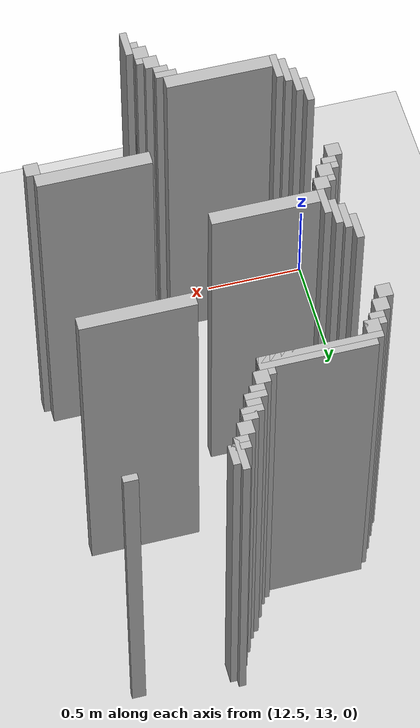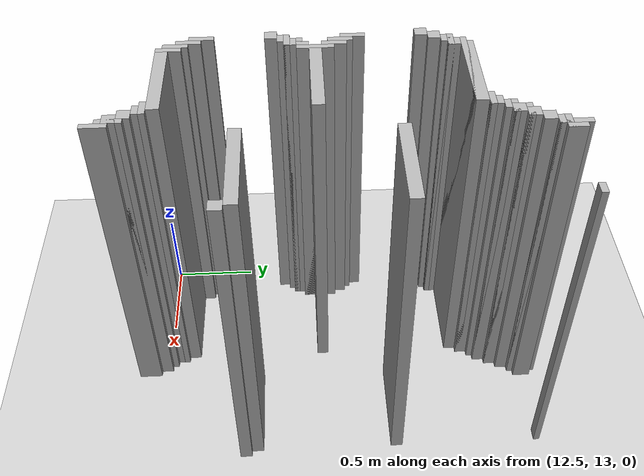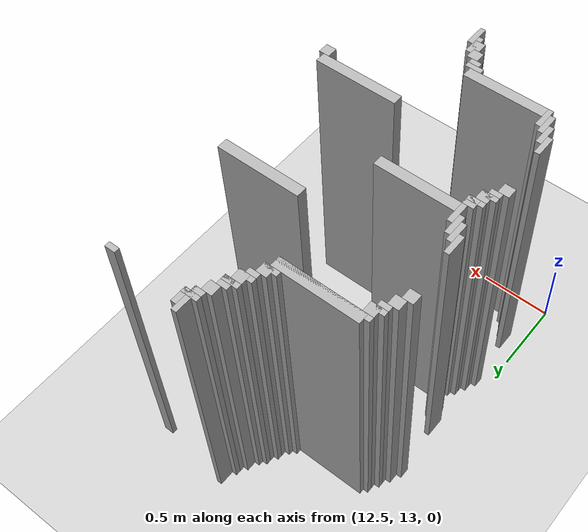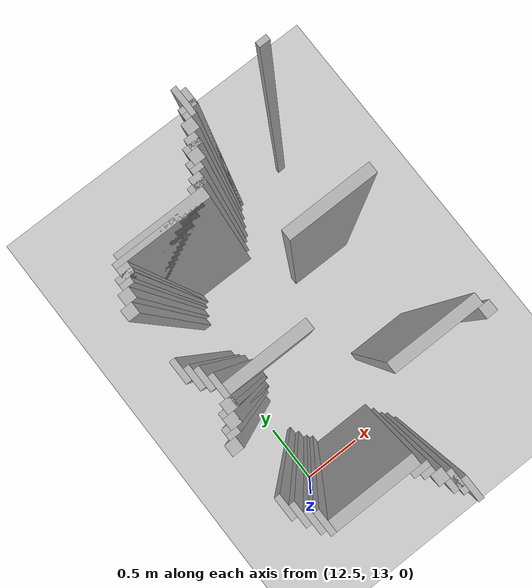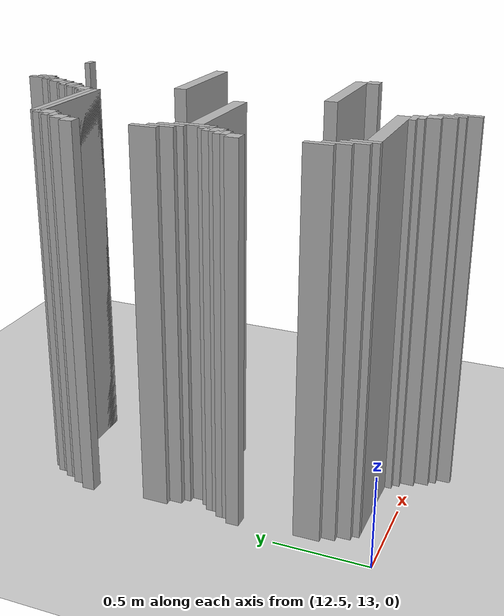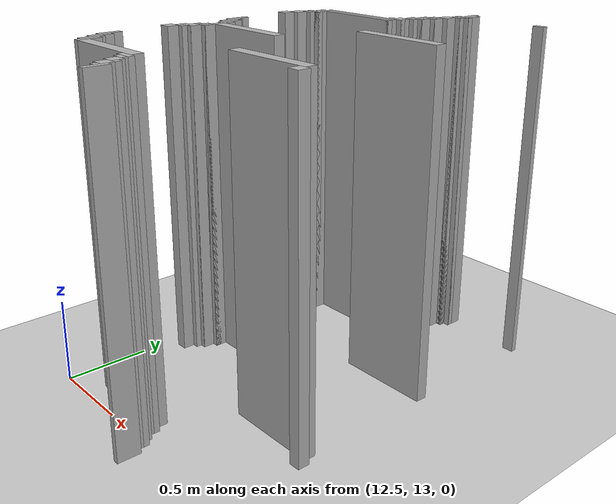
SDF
<sdf version="1.6">
 <world name="slam_world">
  <model name="ground_plane">
   <static>true</static>
   <link name="link">
    <collision name="collision">
     <geometry><plane><normal>0 0 1</normal><size>100 100</size></plane></geometry>
    </collision>
    <visual name="visual">
     <geometry><plane><normal>0 0 1</normal><size>100 100</size></plane></geometry>
     <material>
      <ambient>0.8 0.8 0.8 1</ambient>
      <diffuse>0.8 0.8 0.8 1</diffuse>
      <specular>0.8 0.8 0.8 1</specular>
     </material>
    </visual>
   </link>
  </model>
  <model name="wall_708">
   <static>true</static>
   <pose>13.451276102088167 15.261020881670532 1.0 0 0 0</pose>
   <link name="link">
    <collision name="collision">
     <geometry><box><size>0.03480278422273782 0.17401392111368907 2.0</size></box></geometry>
    </collision>
    <visual name="visual">
     <geometry><box><size>0.03480278422273782 0.17401392111368907 2.0</size></box></geometry>
     <material><ambient>0.5 0.5 0.5 1</ambient><diffuse>0.7 0.7 0.7 1</diffuse></material>
    </visual>
   </link>
  </model>
  <model name="wall_725">
   <static>true</static>
   <pose>13.486078886310905 15.261020881670532 1.0 0 0 0</pose>
   <link name="link">
    <collision name="collision">
     <geometry><box><size>0.03480278422273782 0.10440835266821345 2.0</size></box></geometry>
    </collision>
    <visual name="visual">
     <geometry><box><size>0.03480278422273782 0.10440835266821345 2.0</size></box></geometry>
     <material><ambient>0.5 0.5 0.5 1</ambient><diffuse>0.7 0.7 0.7 1</diffuse></material>
    </visual>
   </link>
  </model>
  <model name="wall_737">
   <static>true</static>
   <pose>13.955916473317865 15.261020881670532 1.0 0 0 0</pose>
   <link name="link">
    <collision name="collision">
     <geometry><box><size>0.06960556844547564 0.03480278422273782 2.0</size></box></geometry>
    </collision>
    <visual name="visual">
     <geometry><box><size>0.06960556844547564 0.03480278422273782 2.0</size></box></geometry>
     <material><ambient>0.5 0.5 0.5 1</ambient><diffuse>0.7 0.7 0.7 1</diffuse></material>
    </visual>
   </link>
  </model>
  <model name="wall_747">
   <static>true</static>
   <pose>13.451276102088167 15.226218097447795 1.0 0 0 0</pose>
   <link name="link">
    <collision name="collision">
     <geometry><box><size>0.10440835266821345 0.03480278422273782 2.0</size></box></geometry>
    </collision>
    <visual name="visual">
     <geometry><box><size>0.10440835266821345 0.03480278422273782 2.0</size></box></geometry>
     <material><ambient>0.5 0.5 0.5 1</ambient><diffuse>0.7 0.7 0.7 1</diffuse></material>
    </visual>
   </link>
  </model>
  <model name="wall_759">
   <static>true</static>
   <pose>13.433874709976797 15.191415313225058 1.0 0 0 0</pose>
   <link name="link">
    <collision name="collision">
     <geometry><box><size>0.06960556844547564 0.03480278422273782 2.0</size></box></geometry>
    </collision>
    <visual name="visual">
     <geometry><box><size>0.06960556844547564 0.03480278422273782 2.0</size></box></geometry>
     <material><ambient>0.5 0.5 0.5 1</ambient><diffuse>0.7 0.7 0.7 1</diffuse></material>
    </visual>
   </link>
  </model>
  <model name="wall_771">
   <static>true</static>
   <pose>13.39907192575406 15.139211136890951 1.0 0 0 0</pose>
   <link name="link">
    <collision name="collision">
     <geometry><box><size>0.06960556844547564 0.06960556844547564 2.0</size></box></geometry>
    </collision>
    <visual name="visual">
     <geometry><box><size>0.06960556844547564 0.06960556844547564 2.0</size></box></geometry>
     <material><ambient>0.5 0.5 0.5 1</ambient><diffuse>0.7 0.7 0.7 1</diffuse></material>
    </visual>
   </link>
  </model>
  <model name="wall_783">
   <static>true</static>
   <pose>13.364269141531322 15.069605568445475 1.0 0 0 0</pose>
   <link name="link">
    <collision name="collision">
     <geometry><box><size>0.06960556844547564 0.06960556844547564 2.0</size></box></geometry>
    </collision>
    <visual name="visual">
     <geometry><box><size>0.06960556844547564 0.06960556844547564 2.0</size></box></geometry>
     <material><ambient>0.5 0.5 0.5 1</ambient><diffuse>0.7 0.7 0.7 1</diffuse></material>
    </visual>
   </link>
  </model>
  <model name="wall_795">
   <static>true</static>
   <pose>13.346867749419953 15.052204176334106 1.0 0 0 0</pose>
   <link name="link">
    <collision name="collision">
     <geometry><box><size>0.10440835266821345 0.03480278422273782 2.0</size></box></geometry>
    </collision>
    <visual name="visual">
     <geometry><box><size>0.10440835266821345 0.03480278422273782 2.0</size></box></geometry>
     <material><ambient>0.5 0.5 0.5 1</ambient><diffuse>0.7 0.7 0.7 1</diffuse></material>
    </visual>
   </link>
  </model>
  <model name="wall_804">
   <static>true</static>
   <pose>13.329466357308585 15.0 1.0 0 0 0</pose>
   <link name="link">
    <collision name="collision">
     <geometry><box><size>0.06960556844547564 0.06960556844547564 2.0</size></box></geometry>
    </collision>
    <visual name="visual">
     <geometry><box><size>0.06960556844547564 0.06960556844547564 2.0</size></box></geometry>
     <material><ambient>0.5 0.5 0.5 1</ambient><diffuse>0.7 0.7 0.7 1</diffuse></material>
    </visual>
   </link>
  </model>
  <model name="wall_816">
   <static>true</static>
   <pose>13.312064965197216 14.982598607888631 1.0 0 0 0</pose>
   <link name="link">
    <collision name="collision">
     <geometry><box><size>0.10440835266821345 0.03480278422273782 2.0</size></box></geometry>
    </collision>
    <visual name="visual">
     <geometry><box><size>0.10440835266821345 0.03480278422273782 2.0</size></box></geometry>
     <material><ambient>0.5 0.5 0.5 1</ambient><diffuse>0.7 0.7 0.7 1</diffuse></material>
    </visual>
   </link>
  </model>
  <model name="wall_824">
   <static>true</static>
   <pose>13.294663573085847 14.947795823665892 1.0 0 0 0</pose>
   <link name="link">
    <collision name="collision">
     <geometry><box><size>0.06960556844547564 0.03480278422273782 2.0</size></box></geometry>
    </collision>
    <visual name="visual">
     <geometry><box><size>0.06960556844547564 0.03480278422273782 2.0</size></box></geometry>
     <material><ambient>0.5 0.5 0.5 1</ambient><diffuse>0.7 0.7 0.7 1</diffuse></material>
    </visual>
   </link>
  </model>
  <model name="wall_836">
   <static>true</static>
   <pose>13.259860788863108 14.895591647331786 1.0 0 0 0</pose>
   <link name="link">
    <collision name="collision">
     <geometry><box><size>0.06960556844547564 0.06960556844547564 2.0</size></box></geometry>
    </collision>
    <visual name="visual">
     <geometry><box><size>0.06960556844547564 0.06960556844547564 2.0</size></box></geometry>
     <material><ambient>0.5 0.5 0.5 1</ambient><diffuse>0.7 0.7 0.7 1</diffuse></material>
    </visual>
   </link>
  </model>
  <model name="wall_841">
   <static>true</static>
   <pose>13.24245939675174 14.878190255220417 1.0 0 0 0</pose>
   <link name="link">
    <collision name="collision">
     <geometry><box><size>0.10440835266821345 0.03480278422273782 2.0</size></box></geometry>
    </collision>
    <visual name="visual">
     <geometry><box><size>0.10440835266821345 0.03480278422273782 2.0</size></box></geometry>
     <material><ambient>0.5 0.5 0.5 1</ambient><diffuse>0.7 0.7 0.7 1</diffuse></material>
    </visual>
   </link>
  </model>
  <model name="wall_855">
   <static>true</static>
   <pose>12.981438515081207 14.825986078886311 1.0 0 0 0</pose>
   <link name="link">
    <collision name="collision">
     <geometry><box><size>0.5568445475638051 0.06960556844547564 2.0</size></box></geometry>
    </collision>
    <visual name="visual">
     <geometry><box><size>0.5568445475638051 0.06960556844547564 2.0</size></box></geometry>
     <material><ambient>0.5 0.5 0.5 1</ambient><diffuse>0.7 0.7 0.7 1</diffuse></material>
    </visual>
   </link>
  </model>
  <model name="wall_866">
   <static>true</static>
   <pose>12.964037122969836 14.80858468677494 1.0 0 0 0</pose>
   <link name="link">
    <collision name="collision">
     <geometry><box><size>0.5916473317865429 0.03480278422273782 2.0</size></box></geometry>
    </collision>
    <visual name="visual">
     <geometry><box><size>0.5916473317865429 0.03480278422273782 2.0</size></box></geometry>
     <material><ambient>0.5 0.5 0.5 1</ambient><diffuse>0.7 0.7 0.7 1</diffuse></material>
    </visual>
   </link>
  </model>
  <model name="wall_877">
   <static>true</static>
   <pose>12.703016241299304 14.756380510440835 1.0 0 0 0</pose>
   <link name="link">
    <collision name="collision">
     <geometry><box><size>0.06960556844547564 0.06960556844547564 2.0</size></box></geometry>
    </collision>
    <visual name="visual">
     <geometry><box><size>0.06960556844547564 0.06960556844547564 2.0</size></box></geometry>
     <material><ambient>0.5 0.5 0.5 1</ambient><diffuse>0.7 0.7 0.7 1</diffuse></material>
    </visual>
   </link>
  </model>
  <model name="wall_889">
   <static>true</static>
   <pose>12.685614849187935 14.738979118329466 1.0 0 0 0</pose>
   <link name="link">
    <collision name="collision">
     <geometry><box><size>0.10440835266821345 0.03480278422273782 2.0</size></box></geometry>
    </collision>
    <visual name="visual">
     <geometry><box><size>0.10440835266821345 0.03480278422273782 2.0</size></box></geometry>
     <material><ambient>0.5 0.5 0.5 1</ambient><diffuse>0.7 0.7 0.7 1</diffuse></material>
    </visual>
   </link>
  </model>
  <model name="wall_897">
   <static>true</static>
   <pose>12.668213457076565 14.704176334106728 1.0 0 0 0</pose>
   <link name="link">
    <collision name="collision">
     <geometry><box><size>0.06960556844547564 0.03480278422273782 2.0</size></box></geometry>
    </collision>
    <visual name="visual">
     <geometry><box><size>0.06960556844547564 0.03480278422273782 2.0</size></box></geometry>
     <material><ambient>0.5 0.5 0.5 1</ambient><diffuse>0.7 0.7 0.7 1</diffuse></material>
    </visual>
   </link>
  </model>
  <model name="wall_909">
   <static>true</static>
   <pose>12.633410672853827 14.65197215777262 1.0 0 0 0</pose>
   <link name="link">
    <collision name="collision">
     <geometry><box><size>0.06960556844547564 0.06960556844547564 2.0</size></box></geometry>
    </collision>
    <visual name="visual">
     <geometry><box><size>0.06960556844547564 0.06960556844547564 2.0</size></box></geometry>
     <material><ambient>0.5 0.5 0.5 1</ambient><diffuse>0.7 0.7 0.7 1</diffuse></material>
    </visual>
   </link>
  </model>
  <model name="wall_921">
   <static>true</static>
   <pose>12.59860788863109 14.582366589327146 1.0 0 0 0</pose>
   <link name="link">
    <collision name="collision">
     <geometry><box><size>0.06960556844547564 0.06960556844547564 2.0</size></box></geometry>
    </collision>
    <visual name="visual">
     <geometry><box><size>0.06960556844547564 0.06960556844547564 2.0</size></box></geometry>
     <material><ambient>0.5 0.5 0.5 1</ambient><diffuse>0.7 0.7 0.7 1</diffuse></material>
    </visual>
   </link>
  </model>
  <model name="wall_975">
   <static>true</static>
   <pose>13.7122969837587 14.408352668213457 1.0 0 0 0</pose>
   <link name="link">
    <collision name="collision">
     <geometry><box><size>0.5568445475638051 0.06960556844547564 2.0</size></box></geometry>
    </collision>
    <visual name="visual">
     <geometry><box><size>0.5568445475638051 0.06960556844547564 2.0</size></box></geometry>
     <material><ambient>0.5 0.5 0.5 1</ambient><diffuse>0.7 0.7 0.7 1</diffuse></material>
    </visual>
   </link>
  </model>
  <model name="wall_1042">
   <static>true</static>
   <pose>12.616009280742459 14.199535962877029 1.0 0 0 0</pose>
   <link name="link">
    <collision name="collision">
     <geometry><box><size>0.03480278422273782 0.13921113689095127 2.0</size></box></geometry>
    </collision>
    <visual name="visual">
     <geometry><box><size>0.03480278422273782 0.13921113689095127 2.0</size></box></geometry>
     <material><ambient>0.5 0.5 0.5 1</ambient><diffuse>0.7 0.7 0.7 1</diffuse></material>
    </visual>
   </link>
  </model>
  <model name="wall_1057">
   <static>true</static>
   <pose>12.650812064965196 14.129930394431554 1.0 0 0 0</pose>
   <link name="link">
    <collision name="collision">
     <geometry><box><size>0.03480278422273782 0.13921113689095127 2.0</size></box></geometry>
    </collision>
    <visual name="visual">
     <geometry><box><size>0.03480278422273782 0.13921113689095127 2.0</size></box></geometry>
     <material><ambient>0.5 0.5 0.5 1</ambient><diffuse>0.7 0.7 0.7 1</diffuse></material>
    </visual>
   </link>
  </model>
  <model name="wall_1072">
   <static>true</static>
   <pose>12.685614849187935 14.095127610208817 1.0 0 0 0</pose>
   <link name="link">
    <collision name="collision">
     <geometry><box><size>0.03480278422273782 0.13921113689095127 2.0</size></box></geometry>
    </collision>
    <visual name="visual">
     <geometry><box><size>0.03480278422273782 0.13921113689095127 2.0</size></box></geometry>
     <material><ambient>0.5 0.5 0.5 1</ambient><diffuse>0.7 0.7 0.7 1</diffuse></material>
    </visual>
   </link>
  </model>
  <model name="wall_1095">
   <static>true</static>
   <pose>12.720417633410673 13.990719257540603 1.0 0 0 0</pose>
   <link name="link">
    <collision name="collision">
     <geometry><box><size>0.03480278422273782 0.2088167053364269 2.0</size></box></geometry>
    </collision>
    <visual name="visual">
     <geometry><box><size>0.03480278422273782 0.2088167053364269 2.0</size></box></geometry>
     <material><ambient>0.5 0.5 0.5 1</ambient><diffuse>0.7 0.7 0.7 1</diffuse></material>
    </visual>
   </link>
  </model>
  <model name="wall_1117">
   <static>true</static>
   <pose>12.998839907192576 13.990719257540603 1.0 0 0 0</pose>
   <link name="link">
    <collision name="collision">
     <geometry><box><size>0.5220417633410672 0.06960556844547564 2.0</size></box></geometry>
    </collision>
    <visual name="visual">
     <geometry><box><size>0.5220417633410672 0.06960556844547564 2.0</size></box></geometry>
     <material><ambient>0.5 0.5 0.5 1</ambient><diffuse>0.7 0.7 0.7 1</diffuse></material>
    </visual>
   </link>
  </model>
  <model name="wall_1133">
   <static>true</static>
   <pose>12.703016241299304 13.921113689095128 1.0 0 0 0</pose>
   <link name="link">
    <collision name="collision">
     <geometry><box><size>0.06960556844547564 0.06960556844547564 2.0</size></box></geometry>
    </collision>
    <visual name="visual">
     <geometry><box><size>0.06960556844547564 0.06960556844547564 2.0</size></box></geometry>
     <material><ambient>0.5 0.5 0.5 1</ambient><diffuse>0.7 0.7 0.7 1</diffuse></material>
    </visual>
   </link>
  </model>
  <model name="wall_1148">
   <static>true</static>
   <pose>12.685614849187935 13.903712296983759 1.0 0 0 0</pose>
   <link name="link">
    <collision name="collision">
     <geometry><box><size>0.10440835266821345 0.03480278422273782 2.0</size></box></geometry>
    </collision>
    <visual name="visual">
     <geometry><box><size>0.10440835266821345 0.03480278422273782 2.0</size></box></geometry>
     <material><ambient>0.5 0.5 0.5 1</ambient><diffuse>0.7 0.7 0.7 1</diffuse></material>
    </visual>
   </link>
  </model>
  <model name="wall_1163">
   <static>true</static>
   <pose>12.668213457076565 13.851508120649651 1.0 0 0 0</pose>
   <link name="link">
    <collision name="collision">
     <geometry><box><size>0.06960556844547564 0.06960556844547564 2.0</size></box></geometry>
    </collision>
    <visual name="visual">
     <geometry><box><size>0.06960556844547564 0.06960556844547564 2.0</size></box></geometry>
     <material><ambient>0.5 0.5 0.5 1</ambient><diffuse>0.7 0.7 0.7 1</diffuse></material>
    </visual>
   </link>
  </model>
  <model name="wall_1178">
   <static>true</static>
   <pose>12.650812064965196 13.834106728538282 1.0 0 0 0</pose>
   <link name="link">
    <collision name="collision">
     <geometry><box><size>0.10440835266821345 0.03480278422273782 2.0</size></box></geometry>
    </collision>
    <visual name="visual">
     <geometry><box><size>0.10440835266821345 0.03480278422273782 2.0</size></box></geometry>
     <material><ambient>0.5 0.5 0.5 1</ambient><diffuse>0.7 0.7 0.7 1</diffuse></material>
    </visual>
   </link>
  </model>
  <model name="wall_1186">
   <static>true</static>
   <pose>12.633410672853827 13.799303944315545 1.0 0 0 0</pose>
   <link name="link">
    <collision name="collision">
     <geometry><box><size>0.06960556844547564 0.03480278422273782 2.0</size></box></geometry>
    </collision>
    <visual name="visual">
     <geometry><box><size>0.06960556844547564 0.03480278422273782 2.0</size></box></geometry>
     <material><ambient>0.5 0.5 0.5 1</ambient><diffuse>0.7 0.7 0.7 1</diffuse></material>
    </visual>
   </link>
  </model>
  <model name="wall_1200">
   <static>true</static>
   <pose>12.59860788863109 13.747099767981437 1.0 0 0 0</pose>
   <link name="link">
    <collision name="collision">
     <geometry><box><size>0.06960556844547564 0.06960556844547564 2.0</size></box></geometry>
    </collision>
    <visual name="visual">
     <geometry><box><size>0.06960556844547564 0.06960556844547564 2.0</size></box></geometry>
     <material><ambient>0.5 0.5 0.5 1</ambient><diffuse>0.7 0.7 0.7 1</diffuse></material>
    </visual>
   </link>
  </model>
  <model name="wall_1249">
   <static>true</static>
   <pose>13.7122969837587 13.573085846867748 1.0 0 0 0</pose>
   <link name="link">
    <collision name="collision">
     <geometry><box><size>0.5568445475638051 0.06960556844547564 2.0</size></box></geometry>
    </collision>
    <visual name="visual">
     <geometry><box><size>0.5568445475638051 0.06960556844547564 2.0</size></box></geometry>
     <material><ambient>0.5 0.5 0.5 1</ambient><diffuse>0.7 0.7 0.7 1</diffuse></material>
    </visual>
   </link>
  </model>
  <model name="wall_1268">
   <static>true</static>
   <pose>13.990719257540603 13.503480278422273 1.0 0 0 0</pose>
   <link name="link">
    <collision name="collision">
     <geometry><box><size>0.06960556844547564 0.06960556844547564 2.0</size></box></geometry>
    </collision>
    <visual name="visual">
     <geometry><box><size>0.06960556844547564 0.06960556844547564 2.0</size></box></geometry>
     <material><ambient>0.5 0.5 0.5 1</ambient><diffuse>0.7 0.7 0.7 1</diffuse></material>
    </visual>
   </link>
  </model>
  <model name="wall_1303">
   <static>true</static>
   <pose>12.616009280742459 13.364269141531322 1.0 0 0 0</pose>
   <link name="link">
    <collision name="collision">
     <geometry><box><size>0.03480278422273782 0.13921113689095127 2.0</size></box></geometry>
    </collision>
    <visual name="visual">
     <geometry><box><size>0.03480278422273782 0.13921113689095127 2.0</size></box></geometry>
     <material><ambient>0.5 0.5 0.5 1</ambient><diffuse>0.7 0.7 0.7 1</diffuse></material>
    </visual>
   </link>
  </model>
  <model name="wall_1321">
   <static>true</static>
   <pose>12.650812064965196 13.294663573085847 1.0 0 0 0</pose>
   <link name="link">
    <collision name="collision">
     <geometry><box><size>0.03480278422273782 0.13921113689095127 2.0</size></box></geometry>
    </collision>
    <visual name="visual">
     <geometry><box><size>0.03480278422273782 0.13921113689095127 2.0</size></box></geometry>
     <material><ambient>0.5 0.5 0.5 1</ambient><diffuse>0.7 0.7 0.7 1</diffuse></material>
    </visual>
   </link>
  </model>
  <model name="wall_1333">
   <static>true</static>
   <pose>12.685614849187935 13.22505800464037 1.0 0 0 0</pose>
   <link name="link">
    <collision name="collision">
     <geometry><box><size>0.03480278422273782 0.13921113689095127 2.0</size></box></geometry>
    </collision>
    <visual name="visual">
     <geometry><box><size>0.03480278422273782 0.13921113689095127 2.0</size></box></geometry>
     <material><ambient>0.5 0.5 0.5 1</ambient><diffuse>0.7 0.7 0.7 1</diffuse></material>
    </visual>
   </link>
  </model>
  <model name="wall_1345">
   <static>true</static>
   <pose>12.720417633410673 13.190255220417633 1.0 0 0 0</pose>
   <link name="link">
    <collision name="collision">
     <geometry><box><size>0.03480278422273782 0.13921113689095127 2.0</size></box></geometry>
    </collision>
    <visual name="visual">
     <geometry><box><size>0.03480278422273782 0.13921113689095127 2.0</size></box></geometry>
     <material><ambient>0.5 0.5 0.5 1</ambient><diffuse>0.7 0.7 0.7 1</diffuse></material>
    </visual>
   </link>
  </model>
  <model name="wall_1364">
   <static>true</static>
   <pose>12.998839907192576 13.155452436194896 1.0 0 0 0</pose>
   <link name="link">
    <collision name="collision">
     <geometry><box><size>0.5220417633410672 0.06960556844547564 2.0</size></box></geometry>
    </collision>
    <visual name="visual">
     <geometry><box><size>0.5220417633410672 0.06960556844547564 2.0</size></box></geometry>
     <material><ambient>0.5 0.5 0.5 1</ambient><diffuse>0.7 0.7 0.7 1</diffuse></material>
    </visual>
   </link>
  </model>
  <model name="wall_1384">
   <static>true</static>
   <pose>13.24245939675174 13.103248259860788 1.0 0 0 0</pose>
   <link name="link">
    <collision name="collision">
     <geometry><box><size>0.10440835266821345 0.03480278422273782 2.0</size></box></geometry>
    </collision>
    <visual name="visual">
     <geometry><box><size>0.10440835266821345 0.03480278422273782 2.0</size></box></geometry>
     <material><ambient>0.5 0.5 0.5 1</ambient><diffuse>0.7 0.7 0.7 1</diffuse></material>
    </visual>
   </link>
  </model>
  <model name="wall_1396">
   <static>true</static>
   <pose>13.259860788863108 13.06844547563805 1.0 0 0 0</pose>
   <link name="link">
    <collision name="collision">
     <geometry><box><size>0.06960556844547564 0.03480278422273782 2.0</size></box></geometry>
    </collision>
    <visual name="visual">
     <geometry><box><size>0.06960556844547564 0.03480278422273782 2.0</size></box></geometry>
     <material><ambient>0.5 0.5 0.5 1</ambient><diffuse>0.7 0.7 0.7 1</diffuse></material>
    </visual>
   </link>
  </model>
  <model name="wall_1411">
   <static>true</static>
   <pose>13.294663573085847 13.016241299303944 1.0 0 0 0</pose>
   <link name="link">
    <collision name="collision">
     <geometry><box><size>0.06960556844547564 0.06960556844547564 2.0</size></box></geometry>
    </collision>
    <visual name="visual">
     <geometry><box><size>0.06960556844547564 0.06960556844547564 2.0</size></box></geometry>
     <material><ambient>0.5 0.5 0.5 1</ambient><diffuse>0.7 0.7 0.7 1</diffuse></material>
    </visual>
   </link>
  </model>
  <model name="wall_1426">
   <static>true</static>
   <pose>13.346867749419953 12.946635730858468 1.0 0 0 0</pose>
   <link name="link">
    <collision name="collision">
     <geometry><box><size>0.03480278422273782 0.13921113689095127 2.0</size></box></geometry>
    </collision>
    <visual name="visual">
     <geometry><box><size>0.03480278422273782 0.13921113689095127 2.0</size></box></geometry>
     <material><ambient>0.5 0.5 0.5 1</ambient><diffuse>0.7 0.7 0.7 1</diffuse></material>
    </visual>
   </link>
  </model>
  <model name="wall_1441">
   <static>true</static>
   <pose>13.329466357308585 12.946635730858468 1.0 0 0 0</pose>
   <link name="link">
    <collision name="collision">
     <geometry><box><size>0.06960556844547564 0.06960556844547564 2.0</size></box></geometry>
    </collision>
    <visual name="visual">
     <geometry><box><size>0.06960556844547564 0.06960556844547564 2.0</size></box></geometry>
     <material><ambient>0.5 0.5 0.5 1</ambient><diffuse>0.7 0.7 0.7 1</diffuse></material>
    </visual>
   </link>
  </model>
  <model name="wall_1456">
   <static>true</static>
   <pose>13.38167053364269 12.877030162412993 1.0 0 0 0</pose>
   <link name="link">
    <collision name="collision">
     <geometry><box><size>0.03480278422273782 0.13921113689095127 2.0</size></box></geometry>
    </collision>
    <visual name="visual">
     <geometry><box><size>0.03480278422273782 0.13921113689095127 2.0</size></box></geometry>
     <material><ambient>0.5 0.5 0.5 1</ambient><diffuse>0.7 0.7 0.7 1</diffuse></material>
    </visual>
   </link>
  </model>
 </world>
</sdf>
